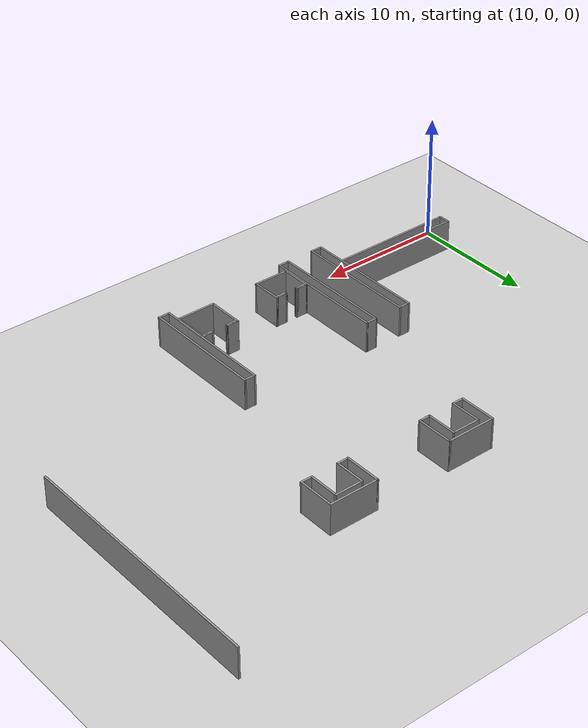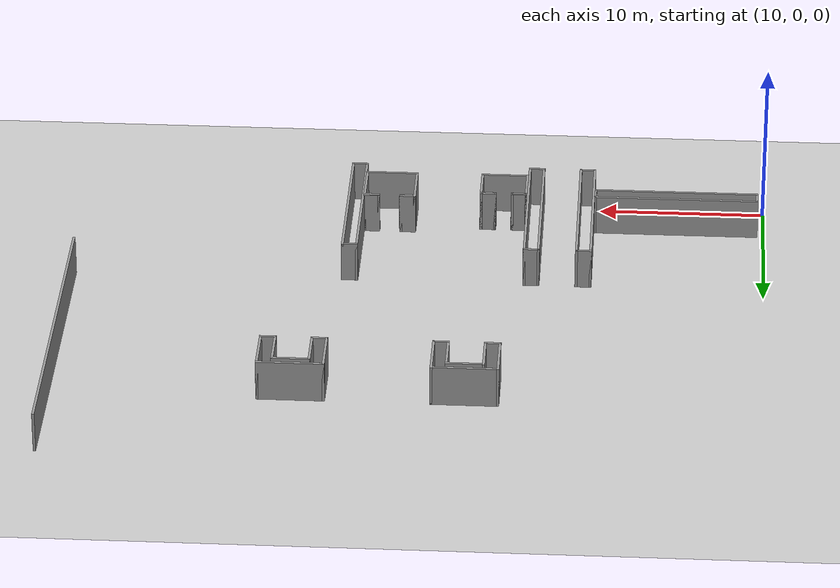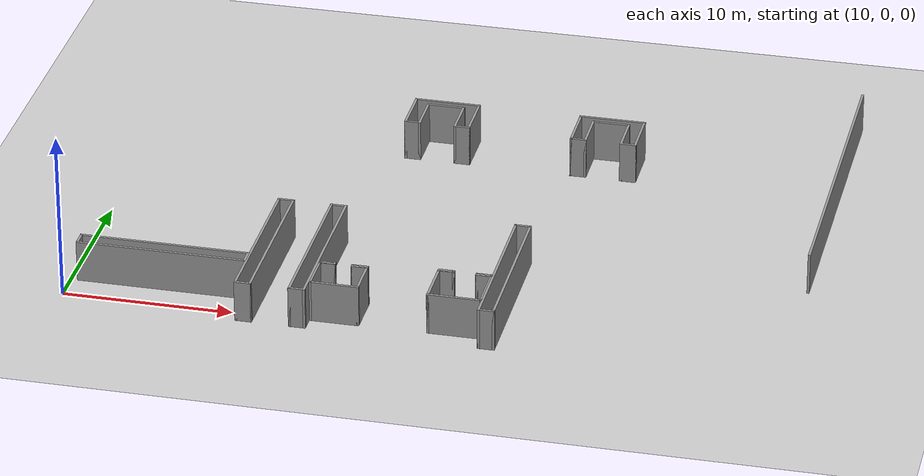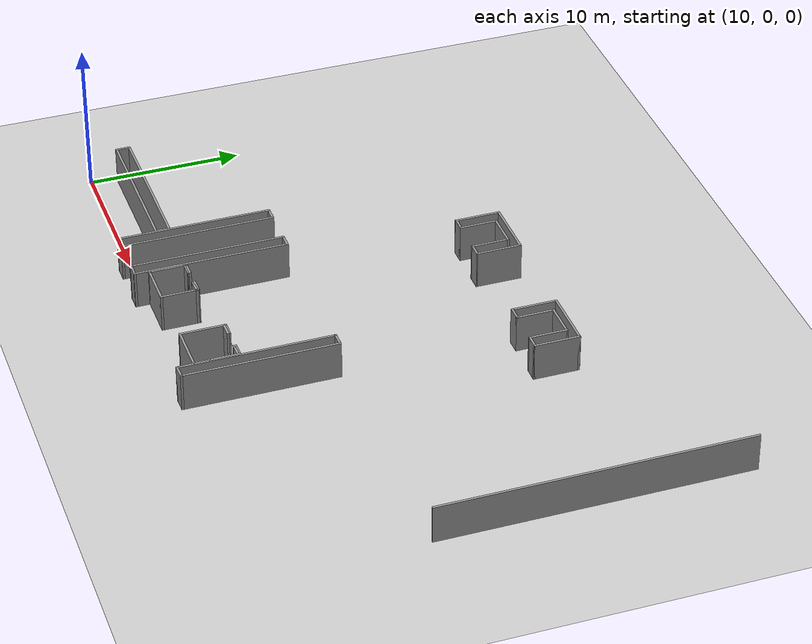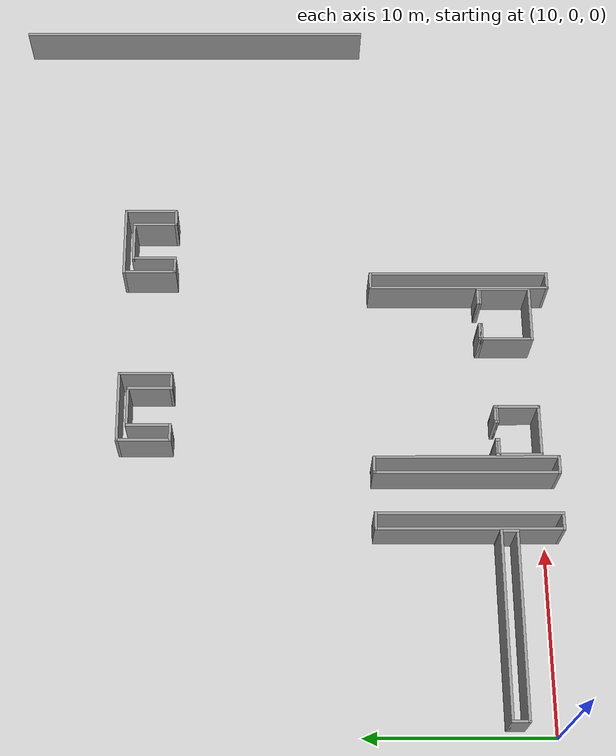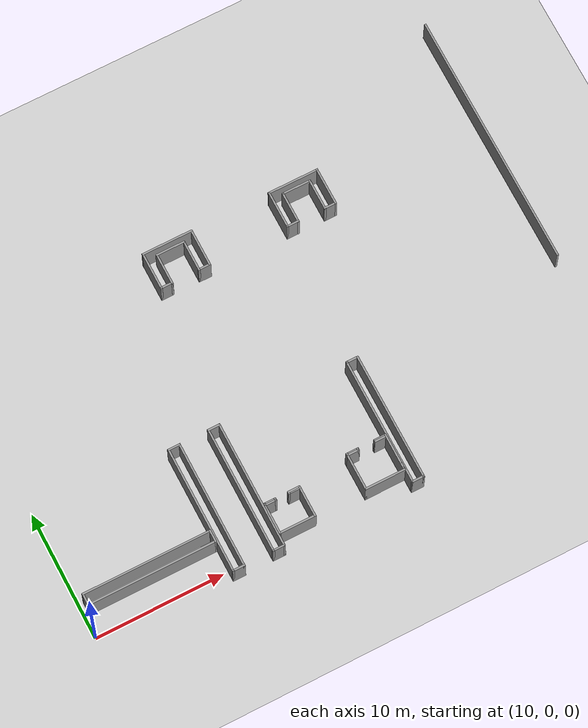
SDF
<sdf version="1.6">
 <world name="default">
  <model name="ground_plane">
   <static>1</static>
   <link name="link">
    <collision name="collision">
     <geometry><plane><normal>0 0 1</normal><size>105 105</size></plane></geometry>
     <surface>
      <contact><collide_bitmask>65535</collide_bitmask></contact>
      <friction><ode><mu>100</mu><mu2>50</mu2></ode></friction>
     </surface>
    </collision>
    <visual name="visual">
     <cast_shadows>0</cast_shadows>
     <geometry><plane><normal>0 0 1</normal><size>105 105</size></plane></geometry>
     <material>
      <script><uri>file://media/materials/scripts/gazebo.material</uri><name>Gazebo/Grey</name></script>
     </material>
    </visual>
   </link>
  </model>
  <model name="wall_v20m_5">
   <pose>51.4329 19.2752 0 0 -0 0</pose>
   <link name="Wall_35">
    <collision name="Wall_35_Collision">
     <geometry><box><size>20 0.15 2.5</size></box></geometry>
     <pose>0 0 1.25 0 -0 0</pose>
    </collision>
    <visual name="Wall_35_Visual">
     <pose>0 0 1.25 0 -0 0</pose>
     <geometry><box><size>20 0.15 2.5</size></box></geometry>
     <material>
      <script><uri>file://media/materials/scripts/gazebo.material</uri><name>Gazebo/Grey</name></script>
      <ambient>1 1 1 1</ambient>
     </material>
     <meta><layer>0</layer></meta>
    </visual>
    <pose>0 -0 0 0 -0 -1.5708</pose>
   </link>
   <static>1</static>
  </model>
  <model name="base10x1_2">
   <pose>20.8183 4.22171 0 0 -0 0</pose>
   <link name="Wall_15">
    <collision name="Wall_15_Collision">
     <geometry><box><size>10 0.15 2.5</size></box></geometry>
     <pose>0 0 1.25 0 -0 0</pose>
    </collision>
    <visual name="Wall_15_Visual">
     <pose>0 0 1.25 0 -0 0</pose>
     <geometry><box><size>10 0.15 2.5</size></box></geometry>
     <material>
      <script><uri>file://media/materials/scripts/gazebo.material</uri><name>Gazebo/Grey</name></script>
      <ambient>1 1 1 1</ambient>
     </material>
     <meta><layer>0</layer></meta>
    </visual>
    <pose>-0.425 0 0 0 -0 1.5708</pose>
   </link>
   <link name="Wall_16">
    <collision name="Wall_16_Collision">
     <geometry><box><size>1 0.15 2.5</size></box></geometry>
     <pose>0 0 1.25 0 -0 0</pose>
    </collision>
    <visual name="Wall_16_Visual">
     <pose>0 0 1.25 0 -0 0</pose>
     <geometry><box><size>1 0.15 2.5</size></box></geometry>
     <material>
      <script><uri>file://media/materials/scripts/gazebo.material</uri><name>Gazebo/Grey</name></script>
      <ambient>1 1 1 1</ambient>
     </material>
     <meta><layer>0</layer></meta>
    </visual>
    <pose>0 4.925 0 0 -0 0</pose>
   </link>
   <link name="Wall_17">
    <collision name="Wall_17_Collision">
     <geometry><box><size>10 0.15 2.5</size></box></geometry>
     <pose>0 0 1.25 0 -0 0</pose>
    </collision>
    <visual name="Wall_17_Visual">
     <pose>0 0 1.25 0 -0 0</pose>
     <geometry><box><size>10 0.15 2.5</size></box></geometry>
     <material>
      <script><uri>file://media/materials/scripts/gazebo.material</uri><name>Gazebo/Grey</name></script>
      <ambient>1 1 1 1</ambient>
     </material>
     <meta><layer>0</layer></meta>
    </visual>
    <pose>0.425 0 0 0 -0 -1.5708</pose>
   </link>
   <link name="Wall_18">
    <collision name="Wall_18_Collision">
     <geometry><box><size>1 0.15 2.5</size></box></geometry>
     <pose>0 0 1.25 0 -0 0</pose>
    </collision>
    <visual name="Wall_18_Visual">
     <pose>0 0 1.25 0 -0 0</pose>
     <geometry><box><size>1 0.15 2.5</size></box></geometry>
     <material>
      <script><uri>file://media/materials/scripts/gazebo.material</uri><name>Gazebo/Grey</name></script>
      <ambient>1 1 1 1</ambient>
     </material>
     <meta><layer>0</layer></meta>
    </visual>
    <pose>0 -4.925 0 0 -0 3.14159</pose>
   </link>
   <static>1</static>
  </model>
  <model name="base1x10_0">
   <pose>15.357 2.17425 0 0 -0 0</pose>
   <link name="Wall_0">
    <collision name="Wall_0_Collision">
     <geometry><box><size>1 0.15 2.5</size></box></geometry>
     <pose>0 0 1.25 0 -0 0</pose>
    </collision>
    <visual name="Wall_0_Visual">
     <pose>0 0 1.25 0 -0 0</pose>
     <geometry><box><size>1 0.15 2.5</size></box></geometry>
     <material>
      <script><uri>file://media/materials/scripts/gazebo.material</uri><name>Gazebo/Grey</name></script>
      <ambient>1 1 1 1</ambient>
     </material>
     <meta><layer>0</layer></meta>
    </visual>
    <pose>-4.925 -0 0 0 -0 -1.5708</pose>
   </link>
   <link name="Wall_1">
    <collision name="Wall_1_Collision">
     <geometry><box><size>10 0.15 2.5</size></box></geometry>
     <pose>0 0 1.25 0 -0 0</pose>
    </collision>
    <visual name="Wall_1_Visual">
     <pose>0 0 1.25 0 -0 0</pose>
     <geometry><box><size>10 0.15 2.5</size></box></geometry>
     <material>
      <script><uri>file://media/materials/scripts/gazebo.material</uri><name>Gazebo/Grey</name></script>
      <ambient>1 1 1 1</ambient>
     </material>
     <meta><layer>0</layer></meta>
    </visual>
    <pose>0 -0.425 0 0 -0 0</pose>
   </link>
   <link name="Wall_2">
    <collision name="Wall_2_Collision">
     <geometry><box><size>1 0.15 2.5</size></box></geometry>
     <pose>0 0 1.25 0 -0 0</pose>
    </collision>
    <visual name="Wall_2_Visual">
     <pose>0 0 1.25 0 -0 0</pose>
     <geometry><box><size>1 0.15 2.5</size></box></geometry>
     <material>
      <script><uri>file://media/materials/scripts/gazebo.material</uri><name>Gazebo/Grey</name></script>
      <ambient>1 1 1 1</ambient>
     </material>
     <meta><layer>0</layer></meta>
    </visual>
    <pose>4.925 -0 0 0 -0 1.5708</pose>
   </link>
   <link name="Wall_3">
    <collision name="Wall_3_Collision">
     <geometry><box><size>10 0.15 2.5</size></box></geometry>
     <pose>0 0 1.25 0 -0 0</pose>
    </collision>
    <visual name="Wall_3_Visual">
     <pose>0 0 1.25 0 -0 0</pose>
     <geometry><box><size>10 0.15 2.5</size></box></geometry>
     <material>
      <script><uri>file://media/materials/scripts/gazebo.material</uri><name>Gazebo/Grey</name></script>
      <ambient>1 1 1 1</ambient>
     </material>
     <meta><layer>0</layer></meta>
    </visual>
    <pose>0 0.425 0 0 -0 3.14159</pose>
   </link>
   <static>1</static>
  </model>
  <model name="base10x1_4">
   <pose>34.8544 4.17407 0 0 -0 0</pose>
   <link name="Wall_15">
    <collision name="Wall_15_Collision">
     <geometry><box><size>10 0.15 2.5</size></box></geometry>
     <pose>0 0 1.25 0 -0 0</pose>
    </collision>
    <visual name="Wall_15_Visual">
     <pose>0 0 1.25 0 -0 0</pose>
     <geometry><box><size>10 0.15 2.5</size></box></geometry>
     <material>
      <script><uri>file://media/materials/scripts/gazebo.material</uri><name>Gazebo/Grey</name></script>
      <ambient>1 1 1 1</ambient>
     </material>
     <meta><layer>0</layer></meta>
    </visual>
    <pose>-0.425 0 0 0 -0 1.5708</pose>
   </link>
   <link name="Wall_16">
    <collision name="Wall_16_Collision">
     <geometry><box><size>1 0.15 2.5</size></box></geometry>
     <pose>0 0 1.25 0 -0 0</pose>
    </collision>
    <visual name="Wall_16_Visual">
     <pose>0 0 1.25 0 -0 0</pose>
     <geometry><box><size>1 0.15 2.5</size></box></geometry>
     <material>
      <script><uri>file://media/materials/scripts/gazebo.material</uri><name>Gazebo/Grey</name></script>
      <ambient>1 1 1 1</ambient>
     </material>
     <meta><layer>0</layer></meta>
    </visual>
    <pose>0 4.925 0 0 -0 0</pose>
   </link>
   <link name="Wall_17">
    <collision name="Wall_17_Collision">
     <geometry><box><size>10 0.15 2.5</size></box></geometry>
     <pose>0 0 1.25 0 -0 0</pose>
    </collision>
    <visual name="Wall_17_Visual">
     <pose>0 0 1.25 0 -0 0</pose>
     <geometry><box><size>10 0.15 2.5</size></box></geometry>
     <material>
      <script><uri>file://media/materials/scripts/gazebo.material</uri><name>Gazebo/Grey</name></script>
      <ambient>1 1 1 1</ambient>
     </material>
     <meta><layer>0</layer></meta>
    </visual>
    <pose>0.425 0 0 0 -0 -1.5708</pose>
   </link>
   <link name="Wall_18">
    <collision name="Wall_18_Collision">
     <geometry><box><size>1 0.15 2.5</size></box></geometry>
     <pose>0 0 1.25 0 -0 0</pose>
    </collision>
    <visual name="Wall_18_Visual">
     <pose>0 0 1.25 0 -0 0</pose>
     <geometry><box><size>1 0.15 2.5</size></box></geometry>
     <material>
      <script><uri>file://media/materials/scripts/gazebo.material</uri><name>Gazebo/Grey</name></script>
      <ambient>1 1 1 1</ambient>
     </material>
     <meta><layer>0</layer></meta>
    </visual>
    <pose>0 -4.925 0 0 -0 3.14159</pose>
   </link>
   <static>1</static>
  </model>
  <model name="base10x1_0">
   <pose>23.9471 4.22521 0 0 -0 0</pose>
   <link name="Wall_15">
    <collision name="Wall_15_Collision">
     <geometry><box><size>10 0.15 2.5</size></box></geometry>
     <pose>0 0 1.25 0 -0 0</pose>
    </collision>
    <visual name="Wall_15_Visual">
     <pose>0 0 1.25 0 -0 0</pose>
     <geometry><box><size>10 0.15 2.5</size></box></geometry>
     <material>
      <script><uri>file://media/materials/scripts/gazebo.material</uri><name>Gazebo/Grey</name></script>
      <ambient>1 1 1 1</ambient>
     </material>
     <meta><layer>0</layer></meta>
    </visual>
    <pose>-0.425 0 0 0 -0 1.5708</pose>
   </link>
   <link name="Wall_16">
    <collision name="Wall_16_Collision">
     <geometry><box><size>1 0.15 2.5</size></box></geometry>
     <pose>0 0 1.25 0 -0 0</pose>
    </collision>
    <visual name="Wall_16_Visual">
     <pose>0 0 1.25 0 -0 0</pose>
     <geometry><box><size>1 0.15 2.5</size></box></geometry>
     <material>
      <script><uri>file://media/materials/scripts/gazebo.material</uri><name>Gazebo/Grey</name></script>
      <ambient>1 1 1 1</ambient>
     </material>
     <meta><layer>0</layer></meta>
    </visual>
    <pose>0 4.925 0 0 -0 0</pose>
   </link>
   <link name="Wall_17">
    <collision name="Wall_17_Collision">
     <geometry><box><size>10 0.15 2.5</size></box></geometry>
     <pose>0 0 1.25 0 -0 0</pose>
    </collision>
    <visual name="Wall_17_Visual">
     <pose>0 0 1.25 0 -0 0</pose>
     <geometry><box><size>10 0.15 2.5</size></box></geometry>
     <material>
      <script><uri>file://media/materials/scripts/gazebo.material</uri><name>Gazebo/Grey</name></script>
      <ambient>1 1 1 1</ambient>
     </material>
     <meta><layer>0</layer></meta>
    </visual>
    <pose>0.425 0 0 0 -0 -1.5708</pose>
   </link>
   <link name="Wall_18">
    <collision name="Wall_18_Collision">
     <geometry><box><size>1 0.15 2.5</size></box></geometry>
     <pose>0 0 1.25 0 -0 0</pose>
    </collision>
    <visual name="Wall_18_Visual">
     <pose>0 0 1.25 0 -0 0</pose>
     <geometry><box><size>1 0.15 2.5</size></box></geometry>
     <material>
      <script><uri>file://media/materials/scripts/gazebo.material</uri><name>Gazebo/Grey</name></script>
      <ambient>1 1 1 1</ambient>
     </material>
     <meta><layer>0</layer></meta>
    </visual>
    <pose>0 -4.925 0 0 -0 3.14159</pose>
   </link>
   <static>1</static>
  </model>
  <model name="box_u_v4X3X2.5_5">
   <pose>37.3545 21.4863 0 0 -0 0</pose>
   <link name="Wall_30">
    <collision name="Wall_30_Collision">
     <geometry><box><size>3 0.15 2.5</size></box></geometry>
     <pose>0 0 1.25 0 -0 0</pose>
    </collision>
    <visual name="Wall_30_Visual">
     <pose>0 0 1.25 0 -0 0</pose>
     <geometry><box><size>3 0.15 2.5</size></box></geometry>
     <material>
      <script><uri>file://media/materials/scripts/gazebo.material</uri><name>Gazebo/Grey</name></script>
      <ambient>1 1 1 1</ambient>
     </material>
     <meta><layer>0</layer></meta>
    </visual>
    <pose>-1.925 0 0 0 -0 -1.5708</pose>
   </link>
   <link name="Wall_32">
    <collision name="Wall_32_Collision">
     <geometry><box><size>4 0.15 2.5</size></box></geometry>
     <pose>0 0 1.25 0 -0 0</pose>
    </collision>
    <visual name="Wall_32_Visual">
     <pose>0 0 1.25 0 -0 0</pose>
     <geometry><box><size>4 0.15 2.5</size></box></geometry>
     <material>
      <script><uri>file://media/materials/scripts/gazebo.material</uri><name>Gazebo/Grey</name></script>
      <ambient>1 1 1 1</ambient>
     </material>
     <meta><layer>0</layer></meta>
    </visual>
    <pose>0 1.425 0 0 -0 0</pose>
   </link>
   <link name="Wall_33">
    <collision name="Wall_33_Collision">
     <geometry><box><size>3 0.15 2.5</size></box></geometry>
     <pose>0 0 1.25 0 -0 0</pose>
    </collision>
    <visual name="Wall_33_Visual">
     <pose>0 0 1.25 0 -0 0</pose>
     <geometry><box><size>3 0.15 2.5</size></box></geometry>
     <material>
      <script><uri>file://media/materials/scripts/gazebo.material</uri><name>Gazebo/Grey</name></script>
      <ambient>1 1 1 1</ambient>
     </material>
     <meta><layer>0</layer></meta>
    </visual>
    <pose>1.925 0 0 0 -0 -1.5708</pose>
   </link>
   <link name="Wall_34">
    <collision name="Wall_34_Collision">
     <geometry><box><size>1 0.15 2.5</size></box></geometry>
     <pose>0 0 1.25 0 -0 0</pose>
    </collision>
    <visual name="Wall_34_Visual">
     <pose>0 0 1.25 0 -0 0</pose>
     <geometry><box><size>1 0.15 2.5</size></box></geometry>
     <material>
      <script><uri>file://media/materials/scripts/gazebo.material</uri><name>Gazebo/Grey</name></script>
      <ambient>1 1 1 1</ambient>
     </material>
     <meta><layer>0</layer></meta>
    </visual>
    <pose>1.5 -1.425 0 0 -0 3.14159</pose>
   </link>
   <link name="Wall_35">
    <collision name="Wall_35_Collision">
     <geometry><box><size>2.5 0.15 2.5</size></box></geometry>
     <pose>0 0 1.25 0 -0 0</pose>
    </collision>
    <visual name="Wall_35_Visual">
     <pose>0 0 1.25 0 -0 0</pose>
     <geometry><box><size>2.5 0.15 2.5</size></box></geometry>
     <material>
      <script><uri>file://media/materials/scripts/gazebo.material</uri><name>Gazebo/Grey</name></script>
      <ambient>1 1 1 1</ambient>
     </material>
     <meta><layer>0</layer></meta>
    </visual>
    <pose>1.075 -0.25 0 0 -0 1.5708</pose>
   </link>
   <link name="Wall_37">
    <collision name="Wall_37_Collision">
     <geometry><box><size>1 0.15 2.5</size></box></geometry>
     <pose>0 0 1.25 0 -0 0</pose>
    </collision>
    <visual name="Wall_37_Visual">
     <pose>0 0 1.25 0 -0 0</pose>
     <geometry><box><size>1 0.15 2.5</size></box></geometry>
     <material>
      <script><uri>file://media/materials/scripts/gazebo.material</uri><name>Gazebo/Grey</name></script>
      <ambient>1 1 1 1</ambient>
     </material>
     <meta><layer>0</layer></meta>
    </visual>
    <pose>-1.5 -1.425 0 0 -0 0</pose>
   </link>
   <link name="Wall_38">
    <collision name="Wall_38_Collision">
     <geometry><box><size>2.5 0.15 2.5</size></box></geometry>
     <pose>0 0 1.25 0 -0 0</pose>
    </collision>
    <visual name="Wall_38_Visual">
     <pose>0 0 1.25 0 -0 0</pose>
     <geometry><box><size>2.5 0.15 2.5</size></box></geometry>
     <material>
      <script><uri>file://media/materials/scripts/gazebo.material</uri><name>Gazebo/Grey</name></script>
      <ambient>1 1 1 1</ambient>
     </material>
     <meta><layer>0</layer></meta>
    </visual>
    <pose>-1.075 -0.25 0 0 -0 1.5708</pose>
   </link>
   <link name="Wall_39">
    <collision name="Wall_39_Collision">
     <geometry><box><size>2.3 0.15 2.5</size></box></geometry>
     <pose>0 0 1.25 0 -0 0</pose>
    </collision>
    <visual name="Wall_39_Visual">
     <pose>0 0 1.25 0 -0 0</pose>
     <geometry><box><size>2.3 0.15 2.5</size></box></geometry>
     <material>
      <script><uri>file://media/materials/scripts/gazebo.material</uri><name>Gazebo/Grey</name></script>
      <ambient>1 1 1 1</ambient>
     </material>
     <meta><layer>0</layer></meta>
    </visual>
    <pose>0 0.925 0 0 -0 0</pose>
   </link>
   <static>1</static>
  </model>
  <model name="box_u_v4X3X2.5_6">
   <pose>27.2842 21.4921 0 0 -0 0</pose>
   <link name="Wall_30">
    <collision name="Wall_30_Collision">
     <geometry><box><size>3 0.15 2.5</size></box></geometry>
     <pose>0 0 1.25 0 -0 0</pose>
    </collision>
    <visual name="Wall_30_Visual">
     <pose>0 0 1.25 0 -0 0</pose>
     <geometry><box><size>3 0.15 2.5</size></box></geometry>
     <material>
      <script><uri>file://media/materials/scripts/gazebo.material</uri><name>Gazebo/Grey</name></script>
      <ambient>1 1 1 1</ambient>
     </material>
     <meta><layer>0</layer></meta>
    </visual>
    <pose>-1.925 0 0 0 -0 -1.5708</pose>
   </link>
   <link name="Wall_32">
    <collision name="Wall_32_Collision">
     <geometry><box><size>4 0.15 2.5</size></box></geometry>
     <pose>0 0 1.25 0 -0 0</pose>
    </collision>
    <visual name="Wall_32_Visual">
     <pose>0 0 1.25 0 -0 0</pose>
     <geometry><box><size>4 0.15 2.5</size></box></geometry>
     <material>
      <script><uri>file://media/materials/scripts/gazebo.material</uri><name>Gazebo/Grey</name></script>
      <ambient>1 1 1 1</ambient>
     </material>
     <meta><layer>0</layer></meta>
    </visual>
    <pose>0 1.425 0 0 -0 0</pose>
   </link>
   <link name="Wall_33">
    <collision name="Wall_33_Collision">
     <geometry><box><size>3 0.15 2.5</size></box></geometry>
     <pose>0 0 1.25 0 -0 0</pose>
    </collision>
    <visual name="Wall_33_Visual">
     <pose>0 0 1.25 0 -0 0</pose>
     <geometry><box><size>3 0.15 2.5</size></box></geometry>
     <material>
      <script><uri>file://media/materials/scripts/gazebo.material</uri><name>Gazebo/Grey</name></script>
      <ambient>1 1 1 1</ambient>
     </material>
     <meta><layer>0</layer></meta>
    </visual>
    <pose>1.925 0 0 0 -0 -1.5708</pose>
   </link>
   <link name="Wall_34">
    <collision name="Wall_34_Collision">
     <geometry><box><size>1 0.15 2.5</size></box></geometry>
     <pose>0 0 1.25 0 -0 0</pose>
    </collision>
    <visual name="Wall_34_Visual">
     <pose>0 0 1.25 0 -0 0</pose>
     <geometry><box><size>1 0.15 2.5</size></box></geometry>
     <material>
      <script><uri>file://media/materials/scripts/gazebo.material</uri><name>Gazebo/Grey</name></script>
      <ambient>1 1 1 1</ambient>
     </material>
     <meta><layer>0</layer></meta>
    </visual>
    <pose>1.5 -1.425 0 0 -0 3.14159</pose>
   </link>
   <link name="Wall_35">
    <collision name="Wall_35_Collision">
     <geometry><box><size>2.5 0.15 2.5</size></box></geometry>
     <pose>0 0 1.25 0 -0 0</pose>
    </collision>
    <visual name="Wall_35_Visual">
     <pose>0 0 1.25 0 -0 0</pose>
     <geometry><box><size>2.5 0.15 2.5</size></box></geometry>
     <material>
      <script><uri>file://media/materials/scripts/gazebo.material</uri><name>Gazebo/Grey</name></script>
      <ambient>1 1 1 1</ambient>
     </material>
     <meta><layer>0</layer></meta>
    </visual>
    <pose>1.075 -0.25 0 0 -0 1.5708</pose>
   </link>
   <link name="Wall_37">
    <collision name="Wall_37_Collision">
     <geometry><box><size>1 0.15 2.5</size></box></geometry>
     <pose>0 0 1.25 0 -0 0</pose>
    </collision>
    <visual name="Wall_37_Visual">
     <pose>0 0 1.25 0 -0 0</pose>
     <geometry><box><size>1 0.15 2.5</size></box></geometry>
     <material>
      <script><uri>file://media/materials/scripts/gazebo.material</uri><name>Gazebo/Grey</name></script>
      <ambient>1 1 1 1</ambient>
     </material>
     <meta><layer>0</layer></meta>
    </visual>
    <pose>-1.5 -1.425 0 0 -0 0</pose>
   </link>
   <link name="Wall_38">
    <collision name="Wall_38_Collision">
     <geometry><box><size>2.5 0.15 2.5</size></box></geometry>
     <pose>0 0 1.25 0 -0 0</pose>
    </collision>
    <visual name="Wall_38_Visual">
     <pose>0 0 1.25 0 -0 0</pose>
     <geometry><box><size>2.5 0.15 2.5</size></box></geometry>
     <material>
      <script><uri>file://media/materials/scripts/gazebo.material</uri><name>Gazebo/Grey</name></script>
      <ambient>1 1 1 1</ambient>
     </material>
     <meta><layer>0</layer></meta>
    </visual>
    <pose>-1.075 -0.25 0 0 -0 1.5708</pose>
   </link>
   <link name="Wall_39">
    <collision name="Wall_39_Collision">
     <geometry><box><size>2.3 0.15 2.5</size></box></geometry>
     <pose>0 0 1.25 0 -0 0</pose>
    </collision>
    <visual name="Wall_39_Visual">
     <pose>0 0 1.25 0 -0 0</pose>
     <geometry><box><size>2.3 0.15 2.5</size></box></geometry>
     <material>
      <script><uri>file://media/materials/scripts/gazebo.material</uri><name>Gazebo/Grey</name></script>
      <ambient>1 1 1 1</ambient>
     </material>
     <meta><layer>0</layer></meta>
    </visual>
    <pose>0 0.925 0 0 -0 0</pose>
   </link>
   <static>1</static>
  </model>
  <model name="elevator_120cm_3m">
   <pose>32.812 1.70907 0 0 -0 0</pose>
   <link name="Wall_40">
    <collision name="Wall_40_Collision">
     <geometry><box><size>1 0.15 2.5</size></box></geometry>
     <pose>0 0 1.25 0 -0 0</pose>
    </collision>
    <visual name="Wall_40_Visual">
     <pose>0 0 1.25 0 -0 0</pose>
     <geometry><box><size>1 0.15 2.5</size></box></geometry>
     <material>
      <script><uri>file://media/materials/scripts/gazebo.material</uri><name>Gazebo/Grey</name></script>
      <ambient>1 1 1 1</ambient>
     </material>
     <meta><layer>0</layer></meta>
    </visual>
    <pose>1.1 1.425 0 0 -0 0</pose>
   </link>
   <link name="Wall_41">
    <collision name="Wall_41_Collision">
     <geometry><box><size>3 0.15 2.5</size></box></geometry>
     <pose>0 0 1.25 0 -0 0</pose>
    </collision>
    <visual name="Wall_41_Visual">
     <pose>0 0 1.25 0 -0 0</pose>
     <geometry><box><size>3 0.15 2.5</size></box></geometry>
     <material>
      <script><uri>file://media/materials/scripts/gazebo.material</uri><name>Gazebo/Grey</name></script>
      <ambient>1 1 1 1</ambient>
     </material>
     <meta><layer>0</layer></meta>
    </visual>
    <pose>1.525 0 0 0 -0 -1.5708</pose>
   </link>
   <link name="Wall_43">
    <collision name="Wall_43_Collision">
     <geometry><box><size>1 0.15 2.5</size></box></geometry>
     <pose>0 0 1.25 0 -0 0</pose>
    </collision>
    <visual name="Wall_43_Visual">
     <pose>0 0 1.25 0 -0 0</pose>
     <geometry><box><size>1 0.15 2.5</size></box></geometry>
     <material>
      <script><uri>file://media/materials/scripts/gazebo.material</uri><name>Gazebo/Grey</name></script>
      <ambient>1 1 1 1</ambient>
     </material>
     <meta><layer>0</layer></meta>
    </visual>
    <pose>-1.1 1.425 0 0 -0 3.14159</pose>
   </link>
   <link name="Wall_44">
    <collision name="Wall_44_Collision">
     <geometry><box><size>3 0.15 2.5</size></box></geometry>
     <pose>0 0 1.25 0 -0 0</pose>
    </collision>
    <visual name="Wall_44_Visual">
     <pose>0 0 1.25 0 -0 0</pose>
     <geometry><box><size>3 0.15 2.5</size></box></geometry>
     <material>
      <script><uri>file://media/materials/scripts/gazebo.material</uri><name>Gazebo/Grey</name></script>
      <ambient>1 1 1 1</ambient>
     </material>
     <meta><layer>0</layer></meta>
    </visual>
    <pose>-1.525 0 0 0 -0 -1.5708</pose>
   </link>
   <link name="Wall_45">
    <collision name="Wall_45_Collision">
     <geometry><box><size>3.2 0.15 2.5</size></box></geometry>
     <pose>0 0 1.25 0 -0 0</pose>
    </collision>
    <visual name="Wall_45_Visual">
     <pose>0 0 1.25 0 -0 0</pose>
     <geometry><box><size>3.2 0.15 2.5</size></box></geometry>
     <material>
      <script><uri>file://media/materials/scripts/gazebo.material</uri><name>Gazebo/Grey</name></script>
      <ambient>1 1 1 1</ambient>
     </material>
     <meta><layer>0</layer></meta>
    </visual>
    <pose>0 -1.425 0 0 -0 0</pose>
   </link>
   <link name="Wall_47">
    <collision name="Wall_47_Collision">
     <geometry><box><size>0.25 0.15 2.5</size></box></geometry>
     <pose>0 0 1.25 0 -0 0</pose>
    </collision>
    <visual name="Wall_47_Visual">
     <pose>0 0 1.25 0 -0 0</pose>
     <geometry><box><size>0.25 0.15 2.5</size></box></geometry>
     <material>
      <script><uri>file://media/materials/scripts/gazebo.material</uri><name>Gazebo/Grey</name></script>
      <ambient>1 1 1 1</ambient>
     </material>
     <meta><layer>0</layer></meta>
    </visual>
    <pose>-0.675 1.375 0 0 -0 -1.5708</pose>
   </link>
   <link name="Wall_49">
    <collision name="Wall_49_Collision">
     <geometry><box><size>0.25 0.15 2.5</size></box></geometry>
     <pose>0 0 1.25 0 -0 0</pose>
    </collision>
    <visual name="Wall_49_Visual">
     <pose>0 0 1.25 0 -0 0</pose>
     <geometry><box><size>0.25 0.15 2.5</size></box></geometry>
     <material>
      <script><uri>file://media/materials/scripts/gazebo.material</uri><name>Gazebo/Grey</name></script>
      <ambient>1 1 1 1</ambient>
     </material>
     <meta><layer>0</layer></meta>
    </visual>
    <pose>-1.525 1.375 0 0 -0 -1.5708</pose>
   </link>
   <link name="Wall_50">
    <collision name="Wall_50_Collision">
     <geometry><box><size>1 0.15 2.5</size></box></geometry>
     <pose>0 0 1.25 0 -0 0</pose>
    </collision>
    <visual name="Wall_50_Visual">
     <pose>0 0 1.25 0 -0 0</pose>
     <geometry><box><size>1 0.15 2.5</size></box></geometry>
     <material>
      <script><uri>file://media/materials/scripts/gazebo.material</uri><name>Gazebo/Grey</name></script>
      <ambient>1 1 1 1</ambient>
     </material>
     <meta><layer>0</layer></meta>
    </visual>
    <pose>-1.1 1.325 0 0 -0 0</pose>
   </link>
   <link name="Wall_52">
    <collision name="Wall_52_Collision">
     <geometry><box><size>0.25 0.15 2.5</size></box></geometry>
     <pose>0 0 1.25 0 -0 0</pose>
    </collision>
    <visual name="Wall_52_Visual">
     <pose>0 0 1.25 0 -0 0</pose>
     <geometry><box><size>0.25 0.15 2.5</size></box></geometry>
     <material>
      <script><uri>file://media/materials/scripts/gazebo.material</uri><name>Gazebo/Grey</name></script>
      <ambient>1 1 1 1</ambient>
     </material>
     <meta><layer>0</layer></meta>
    </visual>
    <pose>0.675 1.375 0 0 -0 -1.5708</pose>
   </link>
   <link name="Wall_54">
    <collision name="Wall_54_Collision">
     <geometry><box><size>0.25 0.15 2.5</size></box></geometry>
     <pose>0 0 1.25 0 -0 0</pose>
    </collision>
    <visual name="Wall_54_Visual">
     <pose>0 0 1.25 0 -0 0</pose>
     <geometry><box><size>0.25 0.15 2.5</size></box></geometry>
     <material>
      <script><uri>file://media/materials/scripts/gazebo.material</uri><name>Gazebo/Grey</name></script>
      <ambient>1 1 1 1</ambient>
     </material>
     <meta><layer>0</layer></meta>
    </visual>
    <pose>1.525 1.375 0 0 -0 -1.5708</pose>
   </link>
   <link name="Wall_55">
    <collision name="Wall_55_Collision">
     <geometry><box><size>1 0.15 2.5</size></box></geometry>
     <pose>0 0 1.25 0 -0 0</pose>
    </collision>
    <visual name="Wall_55_Visual">
     <pose>0 0 1.25 0 -0 0</pose>
     <geometry><box><size>1 0.15 2.5</size></box></geometry>
     <material>
      <script><uri>file://media/materials/scripts/gazebo.material</uri><name>Gazebo/Grey</name></script>
      <ambient>1 1 1 1</ambient>
     </material>
     <meta><layer>0</layer></meta>
    </visual>
    <pose>1.1 1.325 0 0 -0 3.14159</pose>
   </link>
   <static>1</static>
  </model>
  <model name="elevator_90cm">
   <pose>25.8767 1.38672 0 0 -0 0</pose>
   <link name="Wall_22">
    <collision name="Wall_22_Collision">
     <geometry><box><size>1 0.15 2.5</size></box></geometry>
     <pose>0 0 1.25 0 -0 0</pose>
    </collision>
    <visual name="Wall_22_Visual">
     <pose>0 0 1.25 0 -0 0</pose>
     <geometry><box><size>1 0.15 2.5</size></box></geometry>
     <material>
      <script><uri>file://media/materials/scripts/gazebo.material</uri><name>Gazebo/Grey</name></script>
      <ambient>1 1 1 1</ambient>
     </material>
     <meta><layer>0</layer></meta>
    </visual>
    <pose>-0.95 1.175 0 0 -0 3.14159</pose>
   </link>
   <link name="Wall_23">
    <collision name="Wall_23_Collision">
     <geometry><box><size>2.5 0.15 2.5</size></box></geometry>
     <pose>0 0 1.25 0 -0 0</pose>
    </collision>
    <visual name="Wall_23_Visual">
     <pose>0 0 1.25 0 -0 0</pose>
     <geometry><box><size>2.5 0.15 2.5</size></box></geometry>
     <material>
      <script><uri>file://media/materials/scripts/gazebo.material</uri><name>Gazebo/Grey</name></script>
      <ambient>1 1 1 1</ambient>
     </material>
     <meta><layer>0</layer></meta>
    </visual>
    <pose>-1.375 0 0 0 -0 -1.5708</pose>
   </link>
   <link name="Wall_25">
    <collision name="Wall_25_Collision">
     <geometry><box><size>1 0.15 2.5</size></box></geometry>
     <pose>0 0 1.25 0 -0 0</pose>
    </collision>
    <visual name="Wall_25_Visual">
     <pose>0 0 1.25 0 -0 0</pose>
     <geometry><box><size>1 0.15 2.5</size></box></geometry>
     <material>
      <script><uri>file://media/materials/scripts/gazebo.material</uri><name>Gazebo/Grey</name></script>
      <ambient>1 1 1 1</ambient>
     </material>
     <meta><layer>0</layer></meta>
    </visual>
    <pose>0.95 1.175 0 0 -0 0</pose>
   </link>
   <link name="Wall_26">
    <collision name="Wall_26_Collision">
     <geometry><box><size>2.5 0.15 2.5</size></box></geometry>
     <pose>0 0 1.25 0 -0 0</pose>
    </collision>
    <visual name="Wall_26_Visual">
     <pose>0 0 1.25 0 -0 0</pose>
     <geometry><box><size>2.5 0.15 2.5</size></box></geometry>
     <material>
      <script><uri>file://media/materials/scripts/gazebo.material</uri><name>Gazebo/Grey</name></script>
      <ambient>1 1 1 1</ambient>
     </material>
     <meta><layer>0</layer></meta>
    </visual>
    <pose>1.375 0 0 0 -0 -1.5708</pose>
   </link>
   <link name="Wall_27">
    <collision name="Wall_27_Collision">
     <geometry><box><size>2.9 0.15 2.5</size></box></geometry>
     <pose>0 0 1.25 0 -0 0</pose>
    </collision>
    <visual name="Wall_27_Visual">
     <pose>0 0 1.25 0 -0 0</pose>
     <geometry><box><size>2.9 0.15 2.5</size></box></geometry>
     <material>
      <script><uri>file://media/materials/scripts/gazebo.material</uri><name>Gazebo/Grey</name></script>
      <ambient>1 1 1 1</ambient>
     </material>
     <meta><layer>0</layer></meta>
    </visual>
    <pose>0 -1.175 0 0 -0 3.14159</pose>
   </link>
   <link name="Wall_29">
    <collision name="Wall_29_Collision">
     <geometry><box><size>0.25 0.15 2.5</size></box></geometry>
     <pose>0 0 1.25 0 -0 0</pose>
    </collision>
    <visual name="Wall_29_Visual">
     <pose>0 0 1.25 0 -0 0</pose>
     <geometry><box><size>0.25 0.15 2.5</size></box></geometry>
     <material>
      <script><uri>file://media/materials/scripts/gazebo.material</uri><name>Gazebo/Grey</name></script>
      <ambient>1 1 1 1</ambient>
     </material>
     <meta><layer>0</layer></meta>
    </visual>
    <pose>-0.525 1.125 0 0 -0 -1.5708</pose>
   </link>
   <link name="Wall_31">
    <collision name="Wall_31_Collision">
     <geometry><box><size>0.25 0.15 2.5</size></box></geometry>
     <pose>0 0 1.25 0 -0 0</pose>
    </collision>
    <visual name="Wall_31_Visual">
     <pose>0 0 1.25 0 -0 0</pose>
     <geometry><box><size>0.25 0.15 2.5</size></box></geometry>
     <material>
      <script><uri>file://media/materials/scripts/gazebo.material</uri><name>Gazebo/Grey</name></script>
      <ambient>1 1 1 1</ambient>
     </material>
     <meta><layer>0</layer></meta>
    </visual>
    <pose>-1.375 1.125 0 0 -0 -1.5708</pose>
   </link>
   <link name="Wall_32">
    <collision name="Wall_32_Collision">
     <geometry><box><size>1 0.15 2.5</size></box></geometry>
     <pose>0 0 1.25 0 -0 0</pose>
    </collision>
    <visual name="Wall_32_Visual">
     <pose>0 0 1.25 0 -0 0</pose>
     <geometry><box><size>1 0.15 2.5</size></box></geometry>
     <material>
      <script><uri>file://media/materials/scripts/gazebo.material</uri><name>Gazebo/Grey</name></script>
      <ambient>1 1 1 1</ambient>
     </material>
     <meta><layer>0</layer></meta>
    </visual>
    <pose>-0.95 1.075 0 0 -0 0</pose>
   </link>
   <link name="Wall_34">
    <collision name="Wall_34_Collision">
     <geometry><box><size>0.25 0.15 2.5</size></box></geometry>
     <pose>0 0 1.25 0 -0 0</pose>
    </collision>
    <visual name="Wall_34_Visual">
     <pose>0 0 1.25 0 -0 0</pose>
     <geometry><box><size>0.25 0.15 2.5</size></box></geometry>
     <material>
      <script><uri>file://media/materials/scripts/gazebo.material</uri><name>Gazebo/Grey</name></script>
      <ambient>1 1 1 1</ambient>
     </material>
     <meta><layer>0</layer></meta>
    </visual>
    <pose>0.525 1.125 0 0 -0 -1.5708</pose>
   </link>
   <link name="Wall_36">
    <collision name="Wall_36_Collision">
     <geometry><box><size>0.25 0.15 2.5</size></box></geometry>
     <pose>0 0 1.25 0 -0 0</pose>
    </collision>
    <visual name="Wall_36_Visual">
     <pose>0 0 1.25 0 -0 0</pose>
     <geometry><box><size>0.25 0.15 2.5</size></box></geometry>
     <material>
      <script><uri>file://media/materials/scripts/gazebo.material</uri><name>Gazebo/Grey</name></script>
      <ambient>1 1 1 1</ambient>
     </material>
     <meta><layer>0</layer></meta>
    </visual>
    <pose>1.375 1.125 0 0 -0 -1.5708</pose>
   </link>
   <link name="Wall_37">
    <collision name="Wall_37_Collision">
     <geometry><box><size>1 0.15 2.5</size></box></geometry>
     <pose>0 0 1.25 0 -0 0</pose>
    </collision>
    <visual name="Wall_37_Visual">
     <pose>0 0 1.25 0 -0 0</pose>
     <geometry><box><size>1 0.15 2.5</size></box></geometry>
     <material>
      <script><uri>file://media/materials/scripts/gazebo.material</uri><name>Gazebo/Grey</name></script>
      <ambient>1 1 1 1</ambient>
     </material>
     <meta><layer>0</layer></meta>
    </visual>
    <pose>0.95 1.075 0 0 -0 3.14159</pose>
   </link>
   <static>1</static>
  </model>
 </world>
</sdf>
